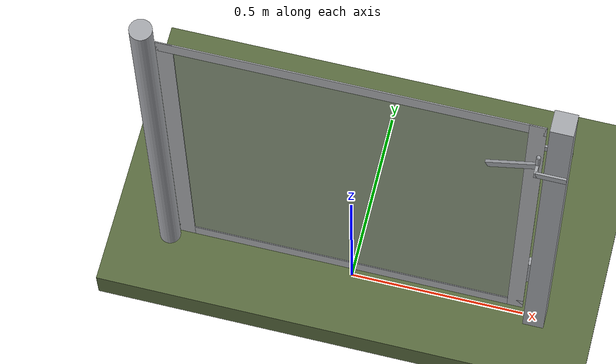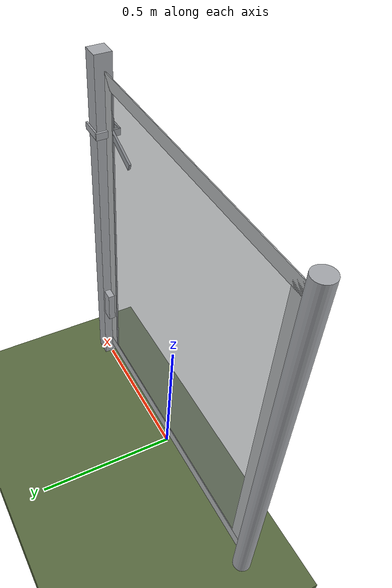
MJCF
<?xml version="1.0" ?>
<mujoco model="db0034_gate_swing_minimal">
  <compiler angle="radian" meshdir="../../hardware" texturedir="../../textures" autolimits="true" inertiafromgeom="false"/>
  <option timestep="0.002" integrator="implicitfast" cone="elliptic" impratio="10" noslip_iterations="3">
    <flag multiccd="enable"/>
  </option>
  <size memory="16M"/>
  <default>
    <geom condim="4" solref="0.005 1" solimp="0.95 0.99 0.001"/>
    <joint solreflimit="0.005 1" solimplimit="0.95 0.99 0.001"/>
    <tendon solreflimit="0.005 1"/>
    <equality solref="0.002 1"/>
  </default>
  <visual>
    <headlight ambient="0.4 0.4 0.4" diffuse="0.7 0.7 0.7" specular="0.2 0.2 0.2"/>
    <quality shadowsize="4096"/>
    <map znear="0.01" zfar="60"/>
  </visual>
  <asset>
    <material name="mat_floor" rgba="0.35 0.42 0.25 1" specular="0.2" shininess="0.15" reflectance="0"/>
    <material name="mat_wall" rgba="0.78 0.76 0.7 1" specular="0.2" shininess="0.1" reflectance="0"/>
    <material name="mat_leaf" rgba="0.7 0.71 0.72 1" specular="0.74" shininess="0.5" reflectance="0.36"/>
    <material name="mat_mesh_infill" rgba="0.6 0.62 0.64 0.55" specular="0.68" shininess="0.3" reflectance="0.1"/>
    <material name="mat_hinge" rgba="0.65 0.66 0.68 1" specular="0.74" shininess="0.5" reflectance="0.36"/>
    <material name="mat_op_steel_galvanized" rgba="0.65 0.66 0.68 1" specular="0.74" shininess="0.5" reflectance="0.36"/>
    <material name="mat_frame" rgba="0.65 0.66 0.68 1" specular="0.74" shininess="0.5" reflectance="0.36"/>
    <material name="mat_fence_mesh" rgba="0.6 0.62 0.64 0.5" specular="0.68" shininess="0.3" reflectance="0.1"/>
    <texture name="skybox" type="skybox" builtin="gradient" rgb1="0.6 0.7 0.85" rgb2="0.9 0.92 0.95" width="256" height="256"/>
  </asset>
  <worldbody>
    <light name="sun" pos="1.5 -2.5 4" dir="-0.3 0.5 -0.8" directional="true" diffuse="0.8 0.8 0.8" specular="0.3 0.3 0.3" castshadow="true"/>
    <light name="fill" pos="-1.5 2.5 3" dir="0.3 -0.5 -0.7" directional="true" diffuse="0.35 0.35 0.4" castshadow="false"/>
    <camera name="robot_view" pos="0 -1.875 1.135" xyaxes="1 0 0 0 0.26963 0.962964" fovy="52"/>
    <camera name="far_view" pos="0 1.875 1.135" xyaxes="-1 0 0 0 -0.26963 0.962964" fovy="52"/>
    <camera name="iso" pos="1.425 -1.575 1.435" xyaxes="0.741536 0.670913 0 -0.242917 0.268487 0.932151" fovy="46"/>
    <camera name="detail_handle" pos="0.666 -0.8135 1.385" xyaxes="0.97561 0.219512 0 -0.070934 0.315262 0.94635" fovy="38"/>
    <geom name="floor" type="box" size="6 6 0.05" pos="0 0 -0.05" material="mat_floor" group="0" contype="1" conaffinity="1" friction="0.8 0.005 0.0001" density="2400"/>
    <geom name="post_hinge" type="cylinder" size="0.03 0.65" pos="-0.536 0 0.65" material="mat_frame" group="0" contype="1" conaffinity="1" friction="0.6 0.005 0.0001" density="800"/>
    <geom name="post_latch" type="box" size="0.03 0.03 0.65" pos="0.536 0 0.65" material="mat_frame" group="0" contype="1" conaffinity="1" friction="0.6 0.005 0.0001" density="800"/>
    <geom name="gate_stop" type="box" size="0.02 0.012 0.06" pos="0.486 0.0135 0.3" material="mat_frame" group="0" contype="1" conaffinity="1" friction="0.6 0.005 0.0001" density="800"/>
    <site name="approach_point" pos="0 -1.5 0" quat="1 0 0 0" size="0.05" rgba="0.2 0.9 0.2 0.5" group="4"/>
    <site name="goal_point" pos="0 1.5 0" quat="1 0 0 0" size="0.05" rgba="0.2 0.9 0.2 0.5" group="4"/>
    <site name="door_plane_center" pos="0 0 0.61" quat="1 0 0 0" size="0.02" rgba="0.2 0.9 0.2 0.5" group="4"/>
    <body name="leaf" pos="-0.506 0 0">
      <inertial pos="0.503 0 0.65" mass="4.533837" quat="-0.5 0.5 0.5 0.5" diaginertia="0.37782879 0.544072161 0.921894151"/>
      <joint name="leaf_hinge" type="hinge" axis="0 0 -1" pos="0.003 -0.05 0" limited="true" range="0 1.570796" damping="0.26672" frictionloss="0.14942" armature="0.02"/>
      <geom name="leaf_slab_col" type="box" size="0.5 0.0015 0.6" pos="0.503 0 0.65" material="mat_leaf" group="3" contype="1" conaffinity="1" rgba="0.8 0.3 0.3 0.25" friction="0.45 0.005 0.0001" density="1"/>
      <geom name="leaf_rail_b" type="box" size="0.5 0.0015 0.0225" pos="0.503 0 0.0725" material="mat_leaf" group="1" contype="0" conaffinity="0" density="1"/>
      <geom name="leaf_rail_t" type="box" size="0.5 0.0015 0.0225" pos="0.503 0 1.2275" material="mat_leaf" group="1" contype="0" conaffinity="0" density="1"/>
      <geom name="leaf_stile_h" type="box" size="0.0225 0.0015 0.6" pos="0.0255 0 0.65" material="mat_leaf" group="1" contype="0" conaffinity="0" density="1"/>
      <geom name="leaf_stile_l" type="box" size="0.0225 0.0015 0.6" pos="0.9805 0 0.65" material="mat_leaf" group="1" contype="0" conaffinity="0" density="1"/>
      <geom name="leaf_mesh" type="box" size="0.455 0.0015 0.555" pos="0.503 0 0.65" material="mat_mesh_infill" group="1" contype="0" conaffinity="0" density="1"/>
      <site name="leaf_edge_mid" pos="1.003 0 0.6" quat="1 0 0 0" size="0.02" rgba="0.2 0.9 0.2 0.5" group="4"/>
      <body name="leaf_fork" pos="0.863 0 1">
        <inertial pos="0.117803 -0.006022 0.042719" mass="0.176769" quat="0.988039 -0.028701 -0.140854 0.05582" diaginertia="0.000144179 0.000541926 0.000626709"/>
        <joint name="leaf_fork_hinge" type="hinge" axis="0 -1 0" limited="true" range="0 1.2" damping="0.028928" frictionloss="0.004642" armature="0.0001"/>
        <geom name="leaf_fork_arm" type="box" size="0.069176 0.004 0.012" pos="0.0645 -0.0135 0.025" quat="0.982958 0 -0.183833 0" material="mat_op_steel_galvanized" group="0" contype="1" conaffinity="1" friction="0.6 0.005 0.0001" density="2500"/>
        <geom name="leaf_fork_tine_n" type="box" size="0.04 0.003 0.012" pos="0.169 -0.039 0.05" material="mat_op_steel_galvanized" group="0" contype="1" conaffinity="1" friction="0.6 0.005 0.0001" density="2500"/>
        <geom name="leaf_fork_tine_p" type="box" size="0.04 0.003 0.012" pos="0.169 0.039 0.05" material="mat_op_steel_galvanized" group="0" contype="1" conaffinity="1" friction="0.6 0.005 0.0001" density="2500"/>
        <geom name="leaf_fork_bridge" type="box" size="0.004 0.042 0.012" pos="0.129 0 0.05" material="mat_op_steel_galvanized" group="0" contype="1" conaffinity="1" friction="0.6 0.005 0.0001" density="2500"/>
        <geom name="leaf_fork_handle" type="capsule" size="0.006 0.018" pos="0.129 -0.0135 0.08" material="mat_op_steel_galvanized" group="0" contype="1" conaffinity="1" friction="0.7 0.01 0.0001" density="2500"/>
        <site name="leaf_fork_grip" pos="0.129 -0.0135 0.105" quat="1 0 0 0" size="0.012" rgba="0.2 0.9 0.2 0.5" group="4"/>
      </body>
    </body>
  </worldbody>
  <sensor>
    <jointpos name="leaf_hinge_pos" joint="leaf_hinge"/>
    <jointvel name="leaf_hinge_vel" joint="leaf_hinge"/>
    <jointpos name="leaf_fork_hinge_pos" joint="leaf_fork_hinge"/>
    <jointvel name="leaf_fork_hinge_vel" joint="leaf_fork_hinge"/>
  </sensor>
</mujoco>
